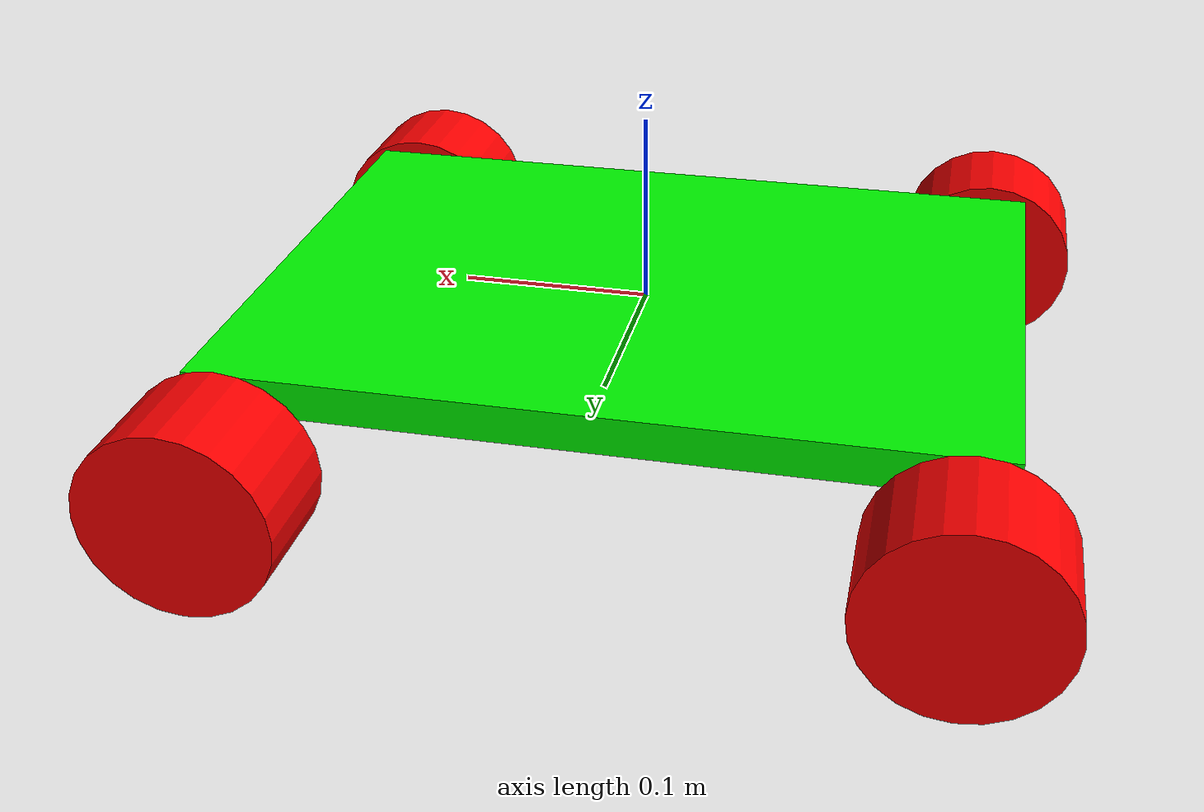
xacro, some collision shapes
<?xml version='1.0'?>

<robot name="ommp_real" xmlns:xacro="http://www.ros.org/wiki/xacro">

  <arg name="robot" default="ommp_robot"/>

  <xacro:property name="prefix" value="" />

  <!-- !Include Sensors macros -->
  <!--ydlidar -->
  <xacro:include filename="$(find ommp_description)/urdf/sensors/lidar.xacro" />

  <!-- !Include Base Macro-->
  <xacro:include filename="$(find ommp_description)/urdf/base/base.xacro" />

  <!-- !Include Wheel Macro-->
  <xacro:include filename="$(find ommp_description)/urdf/wheel/wheel.xacro" />

  <!-- Incude Inertia macros -->

  <!-- Include costum Arm -->

  <!-- Include costum Gripper -->

  <!-- All the bases of the robot -->
  <xacro:ommp_base prefix="${prefix}">
    <chassis_size>
        <box size = "0.4 0.29 0.02"/>
    </chassis_size>
  </xacro:ommp_base>

  <!-- Instanciate the 4 wheels of the robot -->
  <xacro:wheel prefix="${prefix}front_left_" parent="chassis">
    <origin xyz="0.18 0.18 -0.035" rpy="0 0 0"/>
    <wheel_size>
        <cylinder length = "0.06" radius="0.05"/>
    </wheel_size>
  </xacro:wheel>
  <xacro:wheel prefix="${prefix}front_right_" parent="chassis">
    <origin xyz="0.18 -0.18 -0.035" rpy="0 0 0"/>
    <wheel_size>
        <cylinder length = "0.06" radius="0.05"/>
    </wheel_size>
  </xacro:wheel>
  <xacro:wheel prefix="${prefix}rear_left_" parent="chassis">
    <origin xyz="-0.18 0.18 -0.035" rpy="0 0 0"/>
    <wheel_size>
        <cylinder length = "0.06" radius="0.05"/>
    </wheel_size>
  </xacro:wheel>
  <xacro:wheel prefix="${prefix}rear_right_" parent="chassis">
    <origin xyz="-0.18 -0.18 -0.035" rpy="0 0 0"/>
    <wheel_size>
        <cylinder length = "0.06" radius="0.05"/>
    </wheel_size>
  </xacro:wheel>

  <!-- Instanciate the sensor macros -->
  <xacro:sensor_laser prefix="${prefix}"  parent="chassis">
    <origin xyz="0.05 0 0.09" rpy="0 0 0"/>
  </xacro:sensor_laser>

  <!-- Instanciate the Generic Arm macros -->

  <!-- connect arm -->

</robot>

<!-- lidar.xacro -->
<robot xmlns:xacro="http://www.ros.org/wiki/xacro">

  <!-- ydlidar Link -->
  <xacro:macro name="sensor_laser" params="prefix parent *origin">

    <!--joint-->
    <joint type="fixed" name="${prefix}ydlidar_joint">
      <xacro:insert_block name="origin" />
      <child link="laser_frame"/>
      <parent link="${parent}"/>
    </joint>

    <link name="laser_frame">
      <inertial>
        <mass value="0.1"/>
        <origin xyz="0 0 0.0" rpy="0 0 0"/>
        <inertia
            ixx="1e-6" ixy="0" ixz="0"
            iyy="1e-6" iyz="0"
            izz="1e-6"
        />
      </inertial>
      <visual>
        <geometry>
          <mesh filename="package://ommp_description/meshes/sensors/ydlidar/ydlidar.dae"/>
        </geometry>
        <origin xyz="0 0 0" rpy="0 0 0"/>
      </visual>
        <collision>
          <origin xyz="0.0 0.0 0.0" rpy="0 0 0"/>
          <geometry>
            <box size="0.0 0.0 0.0"/>
          </geometry>
        </collision>
    </link>

  </xacro:macro>

  <!-- gazebo macro-->
  <xacro:macro name="laser_gazebo_sensor" params="link_name laser_name  ">
    <!-- hokuyo -->
    <gazebo reference="${link_name}">
      <sensor type="gpu_ray" name="${laser_name}">
        <pose>0 0 0 0 0 0</pose>
        <visualize>false</visualize>
        <update_rate>40</update_rate>
        <ray>
          <scan>
            <horizontal>
              <samples>720</samples>
              <resolution>1</resolution>
              <min_angle>-3.14</min_angle>
              <max_angle>3.14</max_angle>
            </horizontal>
          </scan>
          <range>
            <min>0.3</min>
            <max>50.0</max>
            <resolution>0.01</resolution>
          </range>
          <noise>
            <type>gaussian</type>
            <mean>0.0</mean>
            <stddev>0.0</stddev>
          </noise>
        </ray>
        <plugin name="gazebo_ros_head_ydlidar_controller" filename="libgazebo_ros_gpu_laser.so">
          <topicName>/scan</topicName>
          <frameName>${frame_name}</frameName>
        </plugin>
      </sensor>
    </gazebo>
  </xacro:macro>

</robot>

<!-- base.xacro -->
<robot xmlns:xacro="http://www.ros.org/wiki/xacro">

  <xacro:macro name="ommp_base" params="prefix **chassis_size">

    <link name="${prefix}robot_footprint"></link>

    <joint name="${prefix}robot_footprint_joint" type="fixed">
      <origin xyz="0 0 0" rpy="0 0 0" />
      <parent link="${prefix}robot_footprint"/>
      <child link="${prefix}chassis" />
    </joint>

    <link name='${prefix}chassis'>
     <inertial>
       <origin xyz="0 0 0" rpy="0 0 0"/>
       <mass value="100"/>
       <inertia ixx="0.05"  ixy="0"  ixz="0" iyy="0.05" iyz="0" izz="0.05" />
     </inertial>

     <collision name='collision'>
        <origin xyz="0 0 0" rpy=" 0 0 0"/>
        <geometry>
          <xacro:insert_block name="chassis_size" />
        </geometry>
      </collision>

      <visual name='visual'>
        <origin xyz="0 0 0" rpy=" 0 0 0"/>
        <geometry>
          <xacro:insert_block name="chassis_size" />
        </geometry>
        <material name="green">
          <color rgba="0 1 0 1"/>
        </material>
      </visual>

    </link>

  </xacro:macro>

</robot>

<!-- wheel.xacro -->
<robot xmlns:xacro="http://www.ros.org/wiki/xacro">

  <xacro:property name="M_PI" value="3.141592653" />
  <!-- Wheels -->
  <xacro:macro name="wheel" params="prefix parent *origin **wheel_size">

    <!-- front_left -->
    <joint name="${prefix}wheel_joint" type="continuous">
      <parent link="${parent}"/>
      <child link="${prefix}wheel_link"/>
      <xacro:insert_block name="origin" />
      <axis xyz="0 1 0" rpy="0 0 0" />
    </joint>
    <link name="${prefix}wheel_link">
      <visual>
        <origin xyz="0 0 0" rpy="${M_PI/2} 0 0" />
        <geometry>
          <xacro:insert_block name="wheel_size" />
        </geometry>
        <material name="blue">
          <color rgba="1 0 0 1"/>
        </material>
      </visual>
      <collision>
        <origin xyz="0 0 0" rpy="${M_PI/2} 0 0" />
        <geometry>
          <xacro:insert_block name="wheel_size" />
        </geometry>
      </collision>
      <inertial>
        <origin xyz="0 0 0" rpy="0 0 0"/>
        <mass value="0.477"/>
        <inertia ixx="0.0013"  ixy="0"  ixz="0" iyy="0.0024" iyz="0" izz="0.0013" />
      </inertial>
    </link>

    <!-- Transmission is important to link the joints and the controller-->
    <transmission name="${prefix}wheel_joint_trans">
      <type>transmission_interface/SimpleTransmission</type>
      <joint name="${prefix}wheel_joint" >
        <hardwareInterface>hardware_interface/VelocityJointInterface</hardwareInterface>
      </joint>
      <actuator name="${prefix}wheel_joint_motor">
         <mechanicalReduction>1</mechanicalReduction>
      </actuator>
    </transmission>

    <!-- gazebo -->
    <gazebo reference="${prefix}wheel_link">
      <mu1 value="0.5"/>
      <mu2 value="0.5"/>
      <kp value="10000000.0" />
      <kd value="1.0" />
      <fdir1 value="1 0 0"/>
      <selfCollide>false</selfCollide>
      <material>Gazebo/Blue</material>
    </gazebo>

  </xacro:macro>

</robot>
